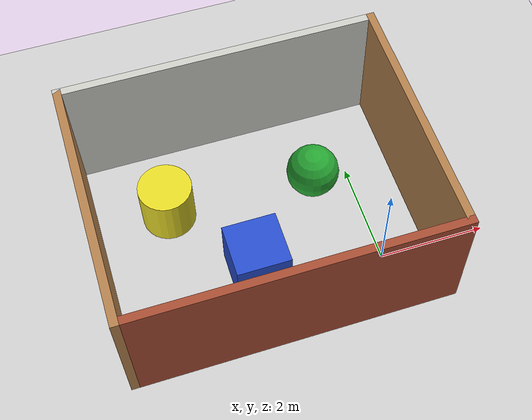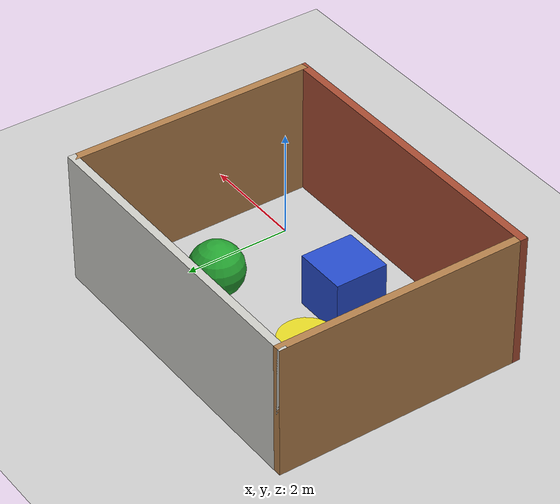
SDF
<sdf version="1.7">
 <world name="default">
  <light name="sun" type="directional">
   <pose>0 0 10 0 -0 0</pose>
   <diffuse>0.8 0.8 0.8 1</diffuse>
   <specular>0.2 0.2 0.2 1</specular>
   <attenuation>
    <range>1000</range>
    <constant>0.9</constant>
    <linear>0.01</linear>
    <quadratic>0.001</quadratic>
   </attenuation>
   <direction>-0.5 0.1 -0.9</direction>
   <spot><inner_angle>0</inner_angle><outer_angle>0</outer_angle><falloff>0</falloff></spot>
  </light>
  <model name="ground_plane">
   <static>1</static>
   <link name="link">
    <collision name="collision">
     <geometry><plane><normal>0 0 1</normal><size>100 100</size></plane></geometry>
     <surface>
      <contact><collide_bitmask>65535</collide_bitmask></contact>
      <friction><ode><mu>100</mu><mu2>50</mu2></ode></friction>
     </surface>
    </collision>
    <visual name="visual">
     <cast_shadows>0</cast_shadows>
     <geometry><plane><normal>0 0 1</normal><size>100 100</size></plane></geometry>
     <material>
      <script><uri>file://media/materials/scripts/gazebo.material</uri><name>Gazebo/Grey</name></script>
     </material>
    </visual>
   </link>
  </model>
  <gravity>0 0 -9.8</gravity>
  <magnetic_field>6e-06 2.3e-05 -4.2e-05</magnetic_field>
  <atmosphere type="adiabatic"/>
  <physics type="ode">
   <max_step_size>0.001</max_step_size>
   <real_time_factor>1</real_time_factor>
   <real_time_update_rate>1000</real_time_update_rate>
  </physics>
  <scene><ambient>0.4 0.4 0.4 1</ambient><background>0.7 0.7 0.7 1</background><shadows>1</shadows></scene>
  <spherical_coordinates>
   <surface_model>EARTH_WGS84</surface_model>
   <latitude_deg>0</latitude_deg>
   <longitude_deg>0</longitude_deg>
   <elevation>0</elevation>
   <heading_deg>0</heading_deg>
  </spherical_coordinates>
  <model name="square">
   <pose>-1.995 1.25 0 0 -0 0</pose>
   <link name="Wall_0">
    <collision name="Wall_0_Collision">
     <geometry><box><size>4.75 0.15 2.5</size></box></geometry>
     <pose>0 0 1.25 0 -0 0</pose>
    </collision>
    <visual name="Wall_0_Visual">
     <pose>0 0 1.25 0 -0 0</pose>
     <geometry><box><size>4.75 0.15 2.5</size></box></geometry>
     <material>
      <script><uri>file://media/materials/scripts/gazebo.material</uri><name>Gazebo/Wood</name></script>
      <ambient>1 1 1 1</ambient>
     </material>
     <meta><layer>0</layer></meta>
    </visual>
    <pose>-2.925 0 0 0 -0 1.5708</pose>
   </link>
   <link name="Wall_1">
    <collision name="Wall_1_Collision">
     <geometry><box><size>6 0.15 2.5</size></box></geometry>
     <pose>0 0 1.25 0 -0 0</pose>
    </collision>
    <visual name="Wall_1_Visual">
     <pose>0 0 1.25 0 -0 0</pose>
     <geometry><box><size>6 0.15 2.5</size></box></geometry>
     <material>
      <script><uri>file://media/materials/scripts/gazebo.material</uri><name>Gazebo/CeilingTiled</name></script>
      <ambient>1 1 1 1</ambient>
     </material>
     <meta><layer>0</layer></meta>
    </visual>
    <pose>0 2.3 0 0 -0 0</pose>
   </link>
   <link name="Wall_2">
    <collision name="Wall_2_Collision">
     <geometry><box><size>4.75 0.15 2.5</size></box></geometry>
     <pose>0 0 1.25 0 -0 0</pose>
    </collision>
    <visual name="Wall_2_Visual">
     <pose>0 0 1.25 0 -0 0</pose>
     <geometry><box><size>4.75 0.15 2.5</size></box></geometry>
     <material>
      <script><uri>file://media/materials/scripts/gazebo.material</uri><name>Gazebo/Wood</name></script>
      <ambient>1 1 1 1</ambient>
     </material>
     <meta><layer>0</layer></meta>
    </visual>
    <pose>2.925 0 0 0 -0 -1.5708</pose>
   </link>
   <link name="Wall_3">
    <collision name="Wall_3_Collision">
     <geometry><box><size>6 0.15 2.5</size></box></geometry>
     <pose>0 0 1.25 0 -0 0</pose>
    </collision>
    <visual name="Wall_3_Visual">
     <pose>0 0 1.25 0 -0 0</pose>
     <geometry><box><size>6 0.15 2.5</size></box></geometry>
     <material>
      <script><uri>file://media/materials/scripts/gazebo.material</uri><name>Gazebo/Bricks</name></script>
      <ambient>1 1 1 1</ambient>
     </material>
     <meta><layer>0</layer></meta>
    </visual>
    <pose>0 -2.3 0 0 -0 3.14159</pose>
   </link>
   <static>1</static>
  </model>
  <model name="ball">
   <link name="link">
    <inertial>
     <mass>20</mass>
     <inertia><ixx>2</ixx><ixy>0</ixy><ixz>0</ixz><iyy>2</iyy><iyz>0</iyz><izz>2</izz></inertia>
    </inertial>
    <visual name="visual">
     <geometry><sphere><radius>0.5</radius></sphere></geometry>
     <material>
      <script><name>Gazebo/Green</name><uri>file://media/materials/scripts/gazebo.material</uri></script>
      <shader type="pixel"><normal_map>__default__</normal_map></shader>
      <ambient>0 1 0 1</ambient>
      <diffuse>0 1 0 1</diffuse>
      <specular>0.1 0.1 0.1 1</specular>
      <emissive>0 0 0 1</emissive>
     </material>
    </visual>
    <collision name="collision">
     <geometry><sphere><radius>0.5</radius></sphere></geometry>
     <surface>
      <friction>
       <ode><mu>1</mu><mu2>1</mu2><fdir1>0 0 0</fdir1><slip1>0</slip1><slip2>0</slip2></ode>
       <torsional>
        <coefficient>1</coefficient>
        <patch_radius>0</patch_radius>
        <surface_radius>0</surface_radius>
        <use_patch_radius>1</use_patch_radius>
        <ode><slip>0</slip></ode>
       </torsional>
      </friction>
      <bounce><restitution_coefficient>0</restitution_coefficient><threshold>1e+06</threshold></bounce>
      <contact>
       <collide_without_contact>0</collide_without_contact>
       <collide_without_contact_bitmask>1</collide_without_contact_bitmask>
       <collide_bitmask>1</collide_bitmask>
       <ode>
        <soft_cfm>0</soft_cfm>
        <soft_erp>0.2</soft_erp>
        <kp>1e+13</kp>
        <kd>1</kd>
        <max_vel>0.01</max_vel>
        <min_depth>0</min_depth>
       </ode>
       <bullet>
        <split_impulse>1</split_impulse>
        <split_impulse_penetration_threshold>-0.01</split_impulse_penetration_threshold>
        <soft_cfm>0</soft_cfm>
        <soft_erp>0.2</soft_erp>
        <kp>1e+13</kp>
        <kd>1</kd>
       </bullet>
      </contact>
     </surface>
    </collision>
   </link>
   <static>0</static>
   <pose>-0.714749 1.89778 0.5 0 -0 0</pose>
  </model>
  <model name="Cylinder">
   <link name="link">
    <inertial>
     <mass>20</mass>
     <inertia><ixx>2.91667</ixx><ixy>0</ixy><ixz>0</ixz><iyy>2.91667</iyy><iyz>0</iyz><izz>2.5</izz></inertia>
    </inertial>
    <visual name="visual">
     <geometry><cylinder><radius>0.5</radius><length>1</length></cylinder></geometry>
     <material>
      <script><name>Gazebo/Yellow</name><uri>file://media/materials/scripts/gazebo.material</uri></script>
      <shader type="pixel"><normal_map>__default__</normal_map></shader>
      <ambient>1 1 0 1</ambient>
      <diffuse>1 1 0 1</diffuse>
      <emissive>0 0 0 1</emissive>
     </material>
    </visual>
    <collision name="collision">
     <geometry><cylinder><radius>0.5</radius><length>1</length></cylinder></geometry>
     <surface>
      <friction>
       <ode><mu>1</mu><mu2>1</mu2><fdir1>0 0 0</fdir1><slip1>0</slip1><slip2>0</slip2></ode>
       <torsional>
        <coefficient>1</coefficient>
        <patch_radius>0</patch_radius>
        <surface_radius>0</surface_radius>
        <use_patch_radius>1</use_patch_radius>
        <ode><slip>0</slip></ode>
       </torsional>
      </friction>
      <bounce><restitution_coefficient>0</restitution_coefficient><threshold>1e+06</threshold></bounce>
      <contact>
       <collide_without_contact>0</collide_without_contact>
       <collide_without_contact_bitmask>1</collide_without_contact_bitmask>
       <collide_bitmask>1</collide_bitmask>
       <ode>
        <soft_cfm>0</soft_cfm>
        <soft_erp>0.2</soft_erp>
        <kp>1e+13</kp>
        <kd>1</kd>
        <max_vel>0.01</max_vel>
        <min_depth>0</min_depth>
       </ode>
       <bullet>
        <split_impulse>1</split_impulse>
        <split_impulse_penetration_threshold>-0.01</split_impulse_penetration_threshold>
        <soft_cfm>0</soft_cfm>
        <soft_erp>0.2</soft_erp>
        <kp>1e+13</kp>
        <kd>1</kd>
       </bullet>
      </contact>
     </surface>
    </collision>
   </link>
   <static>0</static>
   <pose>-3.52005 2.05786 0.499992 -5e-06 4e-06 6e-06</pose>
  </model>
  <model name="unit_box">
   <link name="link">
    <inertial>
     <mass>20</mass>
     <inertia><ixx>3.33333</ixx><ixy>0</ixy><ixz>0</ixz><iyy>3.33333</iyy><iyz>0</iyz><izz>3.33333</izz></inertia>
    </inertial>
    <visual name="visual">
     <geometry><box><size>1 1 1</size></box></geometry>
     <material>
      <script><name>Gazebo/Blue</name><uri>file://media/materials/scripts/gazebo.material</uri></script>
      <shader type="pixel"><normal_map>__default__</normal_map></shader>
      <ambient>0 0 1 1</ambient>
      <diffuse>0 0 1 1</diffuse>
      <specular>0.1 0.1 0.1 1</specular>
      <emissive>0 0 0 1</emissive>
     </material>
    </visual>
    <collision name="collision">
     <geometry><box><size>1 1 1</size></box></geometry>
     <surface>
      <friction>
       <ode><mu>1</mu><mu2>1</mu2><fdir1>0 0 0</fdir1><slip1>0</slip1><slip2>0</slip2></ode>
       <torsional>
        <coefficient>1</coefficient>
        <patch_radius>0</patch_radius>
        <surface_radius>0</surface_radius>
        <use_patch_radius>1</use_patch_radius>
        <ode><slip>0</slip></ode>
       </torsional>
      </friction>
      <bounce><restitution_coefficient>0</restitution_coefficient><threshold>1e+06</threshold></bounce>
      <contact>
       <collide_without_contact>0</collide_without_contact>
       <collide_without_contact_bitmask>1</collide_without_contact_bitmask>
       <collide_bitmask>1</collide_bitmask>
       <ode>
        <soft_cfm>0</soft_cfm>
        <soft_erp>0.2</soft_erp>
        <kp>1e+13</kp>
        <kd>1</kd>
        <max_vel>0.01</max_vel>
        <min_depth>0</min_depth>
       </ode>
       <bullet>
        <split_impulse>1</split_impulse>
        <split_impulse_penetration_threshold>-0.01</split_impulse_penetration_threshold>
        <soft_cfm>0</soft_cfm>
        <soft_erp>0.2</soft_erp>
        <kp>1e+13</kp>
        <kd>1</kd>
       </bullet>
      </contact>
     </surface>
    </collision>
   </link>
   <static>0</static>
   <pose>-2.26993 0.417895 0.5 0 -0 0</pose>
  </model>
 </world>
</sdf>
